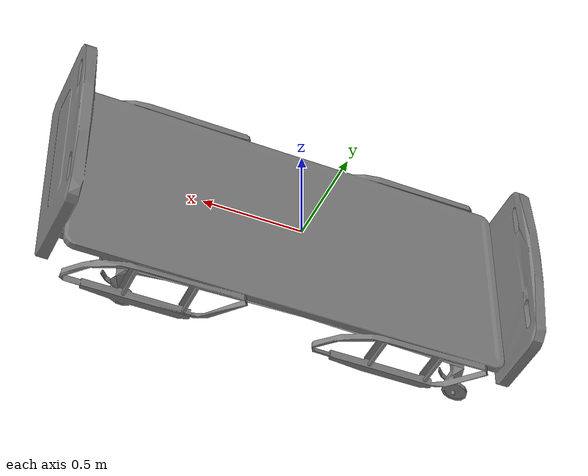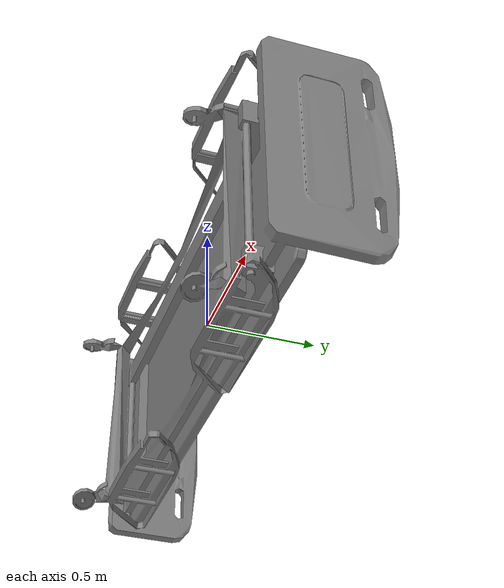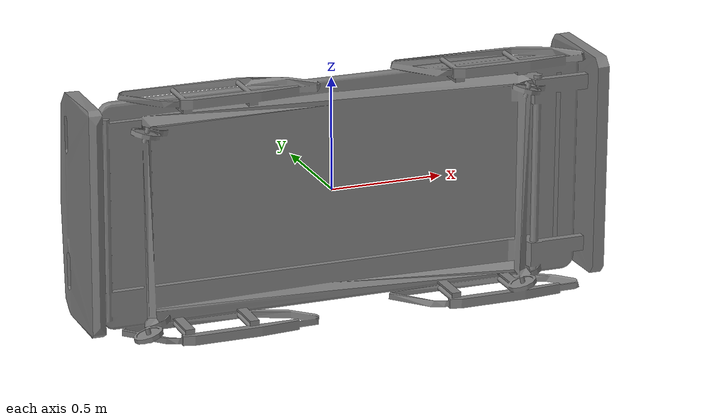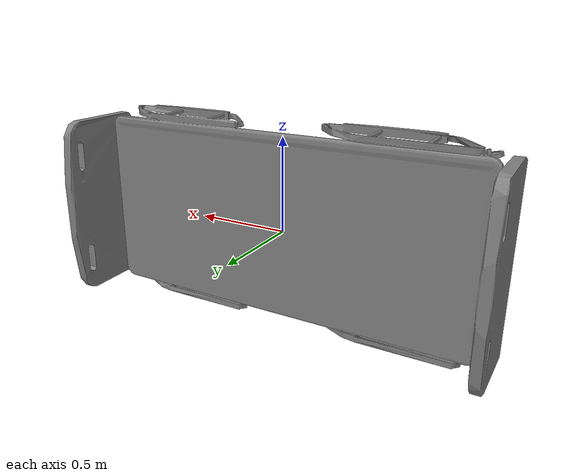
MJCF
<mujoco model="hospital_bed_frame_reduced">
  <default>
    <default class="visual">
      <geom group="2" type="mesh" contype="0" conaffinity="0"/>
    </default>
    <default class="collision">
      <geom group="3" type="mesh"/>
    </default>
  </default>
  <asset>
    <mesh file="hospital_bed_frame_reduced.obj"/>
  </asset>
  <worldbody>
    <body name="hospital_bed_frame_reduced">
      <geom mesh="hospital_bed_frame_reduced" class="visual"/>
      <geom mesh="hospital_bed_frame_reduced" class="collision"/>
    </body>
  </worldbody>
</mujoco>
